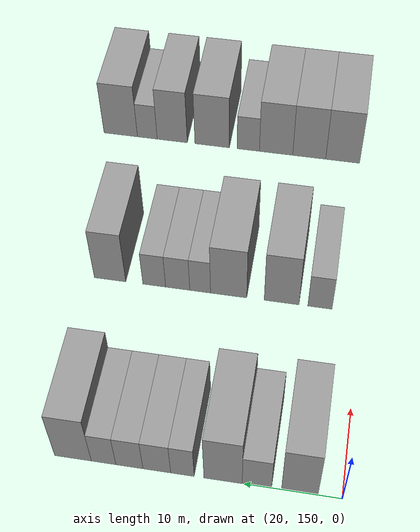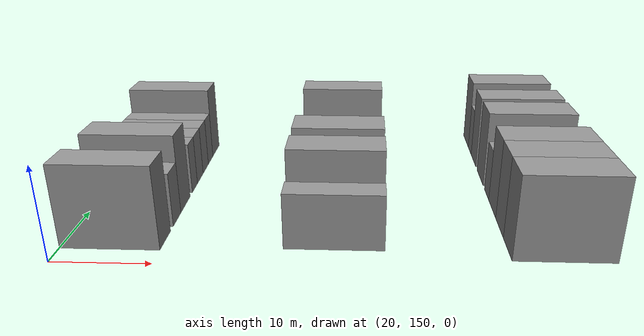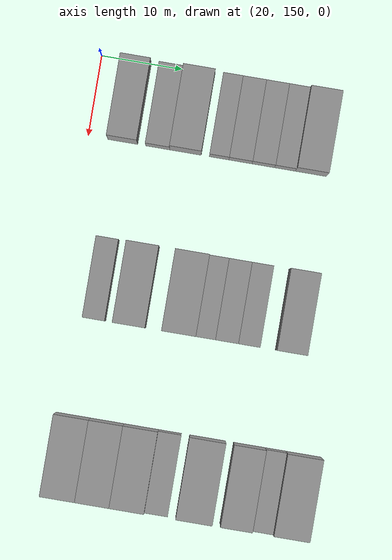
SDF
<sdf version="1.6">
 <world name="default">
  <model name="building_100">
   <static>1</static>
   <pose>25.0000 154.3163 0 0.000000 0.000000 0.000000</pose>
   <link name="link">
    <pose>0 0 4.50 0 0 0</pose>
    <collision name="collision"><geometry><box><size>10.0000 3.6876 9.0000</size></box></geometry></collision>
    <visual name="visual">
     <cast_shadows>0</cast_shadows>
     <geometry><box><size>10.0000 3.6876 9.0000</size></box></geometry>
     <material>
      <script>
       <uri>model://grey_wall/materials/scripts</uri>
       <uri>model://grey_wall/materials/textures</uri>
       <name>vrc/grey_wall</name>
      </script>
     </material>
    </visual>
   </link>
  </model>
  <model name="building_101">
   <static>1</static>
   <pose>25.0000 158.6533 0 0.000000 0.000000 0.000000</pose>
   <link name="link">
    <pose>0 0 3.00 0 0 0</pose>
    <collision name="collision"><geometry><box><size>10.0000 2.9864 6.0000</size></box></geometry></collision>
    <visual name="visual">
     <cast_shadows>0</cast_shadows>
     <geometry><box><size>10.0000 2.9864 6.0000</size></box></geometry>
     <material>
      <script>
       <uri>model://grey_wall/materials/scripts</uri>
       <uri>model://grey_wall/materials/textures</uri>
       <name>vrc/grey_wall</name>
      </script>
     </material>
    </visual>
   </link>
  </model>
  <model name="building_102">
   <static>1</static>
   <pose>25.0000 162.1022 0 0.000000 0.000000 0.000000</pose>
   <link name="link">
    <pose>0 0 4.50 0 0 0</pose>
    <collision name="collision"><geometry><box><size>10.0000 3.9112 9.0000</size></box></geometry></collision>
    <visual name="visual">
     <cast_shadows>0</cast_shadows>
     <geometry><box><size>10.0000 3.9112 9.0000</size></box></geometry>
     <material>
      <script>
       <uri>model://grey_wall/materials/scripts</uri>
       <uri>model://grey_wall/materials/textures</uri>
       <name>vrc/grey_wall</name>
      </script>
     </material>
    </visual>
   </link>
  </model>
  <model name="building_103">
   <static>1</static>
   <pose>25.0000 166.2684 0 0.000000 0.000000 0.000000</pose>
   <link name="link">
    <pose>0 0 3.00 0 0 0</pose>
    <collision name="collision"><geometry><box><size>10.0000 2.4212 6.0000</size></box></geometry></collision>
    <visual name="visual">
     <cast_shadows>0</cast_shadows>
     <geometry><box><size>10.0000 2.4212 6.0000</size></box></geometry>
     <material>
      <script>
       <uri>model://grey_wall/materials/scripts</uri>
       <uri>model://grey_wall/materials/textures</uri>
       <name>vrc/grey_wall</name>
      </script>
     </material>
    </visual>
   </link>
  </model>
  <model name="building_104">
   <static>1</static>
   <pose>25.0000 168.9135 0 0.000000 0.000000 0.000000</pose>
   <link name="link">
    <pose>0 0 3.00 0 0 0</pose>
    <collision name="collision"><geometry><box><size>10.0000 2.8690 6.0000</size></box></geometry></collision>
    <visual name="visual">
     <cast_shadows>0</cast_shadows>
     <geometry><box><size>10.0000 2.8690 6.0000</size></box></geometry>
     <material>
      <script>
       <uri>model://grey_wall/materials/scripts</uri>
       <uri>model://grey_wall/materials/textures</uri>
       <name>vrc/grey_wall</name>
      </script>
     </material>
    </visual>
   </link>
  </model>
  <model name="building_105">
   <static>1</static>
   <pose>25.0000 171.7547 0 0.000000 0.000000 0.000000</pose>
   <link name="link">
    <pose>0 0 3.00 0 0 0</pose>
    <collision name="collision"><geometry><box><size>10.0000 2.8135 6.0000</size></box></geometry></collision>
    <visual name="visual">
     <cast_shadows>0</cast_shadows>
     <geometry><box><size>10.0000 2.8135 6.0000</size></box></geometry>
     <material>
      <script>
       <uri>model://grey_wall/materials/scripts</uri>
       <uri>model://grey_wall/materials/textures</uri>
       <name>vrc/grey_wall</name>
      </script>
     </material>
    </visual>
   </link>
  </model>
  <model name="building_106">
   <static>1</static>
   <pose>25.0000 174.4472 0 0.000000 0.000000 0.000000</pose>
   <link name="link">
    <pose>0 0 3.00 0 0 0</pose>
    <collision name="collision"><geometry><box><size>10.0000 2.5715 6.0000</size></box></geometry></collision>
    <visual name="visual">
     <cast_shadows>0</cast_shadows>
     <geometry><box><size>10.0000 2.5715 6.0000</size></box></geometry>
     <material>
      <script>
       <uri>model://grey_wall/materials/scripts</uri>
       <uri>model://grey_wall/materials/textures</uri>
       <name>vrc/grey_wall</name>
      </script>
     </material>
    </visual>
   </link>
  </model>
  <model name="building_107">
   <static>1</static>
   <pose>25.0000 177.6582 0 0.000000 0.000000 0.000000</pose>
   <link name="link">
    <pose>0 0 4.50 0 0 0</pose>
    <collision name="collision"><geometry><box><size>10.0000 3.8504 9.0000</size></box></geometry></collision>
    <visual name="visual">
     <cast_shadows>0</cast_shadows>
     <geometry><box><size>10.0000 3.8504 9.0000</size></box></geometry>
     <material>
      <script>
       <uri>model://grey_wall/materials/scripts</uri>
       <uri>model://grey_wall/materials/textures</uri>
       <name>vrc/grey_wall</name>
      </script>
     </material>
    </visual>
   </link>
  </model>
  <model name="building_224">
   <static>1</static>
   <pose>47.0000 154.5580 0 0.000000 0.000000 0.000000</pose>
   <link name="link">
    <pose>0 0 3.00 0 0 0</pose>
    <collision name="collision"><geometry><box><size>10.0000 2.7492 6.0000</size></box></geometry></collision>
    <visual name="visual">
     <cast_shadows>0</cast_shadows>
     <geometry><box><size>10.0000 2.7492 6.0000</size></box></geometry>
     <material>
      <script>
       <uri>model://grey_wall/materials/scripts</uri>
       <uri>model://grey_wall/materials/textures</uri>
       <name>vrc/grey_wall</name>
      </script>
     </material>
    </visual>
   </link>
  </model>
  <model name="building_225">
   <static>1</static>
   <pose>47.0000 158.9249 0 0.000000 0.000000 0.000000</pose>
   <link name="link">
    <pose>0 0 4.50 0 0 0</pose>
    <collision name="collision"><geometry><box><size>10.0000 3.9846 9.0000</size></box></geometry></collision>
    <visual name="visual">
     <cast_shadows>0</cast_shadows>
     <geometry><box><size>10.0000 3.9846 9.0000</size></box></geometry>
     <material>
      <script>
       <uri>model://grey_wall/materials/scripts</uri>
       <uri>model://grey_wall/materials/textures</uri>
       <name>vrc/grey_wall</name>
      </script>
     </material>
    </visual>
   </link>
  </model>
  <model name="building_226">
   <static>1</static>
   <pose>47.0000 165.0074 0 0.000000 0.000000 0.000000</pose>
   <link name="link">
    <pose>0 0 4.50 0 0 0</pose>
    <collision name="collision"><geometry><box><size>10.0000 4.1804 9.0000</size></box></geometry></collision>
    <visual name="visual">
     <cast_shadows>0</cast_shadows>
     <geometry><box><size>10.0000 4.1804 9.0000</size></box></geometry>
     <material>
      <script>
       <uri>model://grey_wall/materials/scripts</uri>
       <uri>model://grey_wall/materials/textures</uri>
       <name>vrc/grey_wall</name>
      </script>
     </material>
    </visual>
   </link>
  </model>
  <model name="building_227">
   <static>1</static>
   <pose>47.0000 168.3029 0 0.000000 0.000000 0.000000</pose>
   <link name="link">
    <pose>0 0 3.00 0 0 0</pose>
    <collision name="collision"><geometry><box><size>10.0000 2.4106 6.0000</size></box></geometry></collision>
    <visual name="visual">
     <cast_shadows>0</cast_shadows>
     <geometry><box><size>10.0000 2.4106 6.0000</size></box></geometry>
     <material>
      <script>
       <uri>model://grey_wall/materials/scripts</uri>
       <uri>model://grey_wall/materials/textures</uri>
       <name>vrc/grey_wall</name>
      </script>
     </material>
    </visual>
   </link>
  </model>
  <model name="building_228">
   <static>1</static>
   <pose>47.0000 170.9163 0 0.000000 0.000000 0.000000</pose>
   <link name="link">
    <pose>0 0 3.00 0 0 0</pose>
    <collision name="collision"><geometry><box><size>10.0000 2.8163 6.0000</size></box></geometry></collision>
    <visual name="visual">
     <cast_shadows>0</cast_shadows>
     <geometry><box><size>10.0000 2.8163 6.0000</size></box></geometry>
     <material>
      <script>
       <uri>model://grey_wall/materials/scripts</uri>
       <uri>model://grey_wall/materials/textures</uri>
       <name>vrc/grey_wall</name>
      </script>
     </material>
    </visual>
   </link>
  </model>
  <model name="building_229">
   <static>1</static>
   <pose>47.0000 173.6542 0 0.000000 0.000000 0.000000</pose>
   <link name="link">
    <pose>0 0 3.00 0 0 0</pose>
    <collision name="collision"><geometry><box><size>10.0000 2.6595 6.0000</size></box></geometry></collision>
    <visual name="visual">
     <cast_shadows>0</cast_shadows>
     <geometry><box><size>10.0000 2.6595 6.0000</size></box></geometry>
     <material>
      <script>
       <uri>model://grey_wall/materials/scripts</uri>
       <uri>model://grey_wall/materials/textures</uri>
       <name>vrc/grey_wall</name>
      </script>
     </material>
    </visual>
   </link>
  </model>
  <model name="building_230">
   <static>1</static>
   <pose>47.0000 178.8391 0 0.000000 0.000000 0.000000</pose>
   <link name="link">
    <pose>0 0 4.50 0 0 0</pose>
    <collision name="collision"><geometry><box><size>10.0000 3.7104 9.0000</size></box></geometry></collision>
    <visual name="visual">
     <cast_shadows>0</cast_shadows>
     <geometry><box><size>10.0000 3.7104 9.0000</size></box></geometry>
     <material>
      <script>
       <uri>model://grey_wall/materials/scripts</uri>
       <uri>model://grey_wall/materials/textures</uri>
       <name>vrc/grey_wall</name>
      </script>
     </material>
    </visual>
   </link>
  </model>
  <model name="building_346">
   <static>1</static>
   <pose>69.0000 153.9704 0 0.000000 0.000000 0.000000</pose>
   <link name="link">
    <pose>0 0 4.50 0 0 0</pose>
    <collision name="collision"><geometry><box><size>10.0000 4.2706 9.0000</size></box></geometry></collision>
    <visual name="visual">
     <cast_shadows>0</cast_shadows>
     <geometry><box><size>10.0000 4.2706 9.0000</size></box></geometry>
     <material>
      <script>
       <uri>model://grey_wall/materials/scripts</uri>
       <uri>model://grey_wall/materials/textures</uri>
       <name>vrc/grey_wall</name>
      </script>
     </material>
    </visual>
   </link>
  </model>
  <model name="building_347">
   <static>1</static>
   <pose>69.0000 158.1948 0 0.000000 0.000000 0.000000</pose>
   <link name="link">
    <pose>0 0 4.50 0 0 0</pose>
    <collision name="collision"><geometry><box><size>10.0000 4.1783 9.0000</size></box></geometry></collision>
    <visual name="visual">
     <cast_shadows>0</cast_shadows>
     <geometry><box><size>10.0000 4.1783 9.0000</size></box></geometry>
     <material>
      <script>
       <uri>model://grey_wall/materials/scripts</uri>
       <uri>model://grey_wall/materials/textures</uri>
       <name>vrc/grey_wall</name>
      </script>
     </material>
    </visual>
   </link>
  </model>
  <model name="building_348">
   <static>1</static>
   <pose>69.0000 162.4102 0 0.000000 0.000000 0.000000</pose>
   <link name="link">
    <pose>0 0 4.50 0 0 0</pose>
    <collision name="collision"><geometry><box><size>10.0000 4.2525 9.0000</size></box></geometry></collision>
    <visual name="visual">
     <cast_shadows>0</cast_shadows>
     <geometry><box><size>10.0000 4.2525 9.0000</size></box></geometry>
     <material>
      <script>
       <uri>model://grey_wall/materials/scripts</uri>
       <uri>model://grey_wall/materials/textures</uri>
       <name>vrc/grey_wall</name>
      </script>
     </material>
    </visual>
   </link>
  </model>
  <model name="building_349">
   <static>1</static>
   <pose>69.0000 165.9587 0 0.000000 0.000000 0.000000</pose>
   <link name="link">
    <pose>0 0 3.00 0 0 0</pose>
    <collision name="collision"><geometry><box><size>10.0000 2.8446 6.0000</size></box></geometry></collision>
    <visual name="visual">
     <cast_shadows>0</cast_shadows>
     <geometry><box><size>10.0000 2.8446 6.0000</size></box></geometry>
     <material>
      <script>
       <uri>model://grey_wall/materials/scripts</uri>
       <uri>model://grey_wall/materials/textures</uri>
       <name>vrc/grey_wall</name>
      </script>
     </material>
    </visual>
   </link>
  </model>
  <model name="building_350">
   <static>1</static>
   <pose>69.0000 170.6060 0 0.000000 0.000000 0.000000</pose>
   <link name="link">
    <pose>0 0 4.50 0 0 0</pose>
    <collision name="collision"><geometry><box><size>10.0000 4.4499 9.0000</size></box></geometry></collision>
    <visual name="visual">
     <cast_shadows>0</cast_shadows>
     <geometry><box><size>10.0000 4.4499 9.0000</size></box></geometry>
     <material>
      <script>
       <uri>model://grey_wall/materials/scripts</uri>
       <uri>model://grey_wall/materials/textures</uri>
       <name>vrc/grey_wall</name>
      </script>
     </material>
    </visual>
   </link>
  </model>
  <model name="building_351">
   <static>1</static>
   <pose>69.0000 175.7872 0 0.000000 0.000000 0.000000</pose>
   <link name="link">
    <pose>0 0 4.50 0 0 0</pose>
    <collision name="collision"><geometry><box><size>10.0000 3.9125 9.0000</size></box></geometry></collision>
    <visual name="visual">
     <cast_shadows>0</cast_shadows>
     <geometry><box><size>10.0000 3.9125 9.0000</size></box></geometry>
     <material>
      <script>
       <uri>model://grey_wall/materials/scripts</uri>
       <uri>model://grey_wall/materials/textures</uri>
       <name>vrc/grey_wall</name>
      </script>
     </material>
    </visual>
   </link>
  </model>
  <model name="building_352">
   <static>1</static>
   <pose>69.0000 179.0317 0 0.000000 0.000000 0.000000</pose>
   <link name="link">
    <pose>0 0 3.00 0 0 0</pose>
    <collision name="collision"><geometry><box><size>10.0000 2.5766 6.0000</size></box></geometry></collision>
    <visual name="visual">
     <cast_shadows>0</cast_shadows>
     <geometry><box><size>10.0000 2.5766 6.0000</size></box></geometry>
     <material>
      <script>
       <uri>model://grey_wall/materials/scripts</uri>
       <uri>model://grey_wall/materials/textures</uri>
       <name>vrc/grey_wall</name>
      </script>
     </material>
    </visual>
   </link>
  </model>
  <model name="building_353">
   <static>1</static>
   <pose>69.0000 182.5095 0 0.000000 0.000000 0.000000</pose>
   <link name="link">
    <pose>0 0 4.50 0 0 0</pose>
    <collision name="collision"><geometry><box><size>10.0000 4.3790 9.0000</size></box></geometry></collision>
    <visual name="visual">
     <cast_shadows>0</cast_shadows>
     <geometry><box><size>10.0000 4.3790 9.0000</size></box></geometry>
     <material>
      <script>
       <uri>model://grey_wall/materials/scripts</uri>
       <uri>model://grey_wall/materials/textures</uri>
       <name>vrc/grey_wall</name>
      </script>
     </material>
    </visual>
   </link>
  </model>
 </world>
</sdf>
